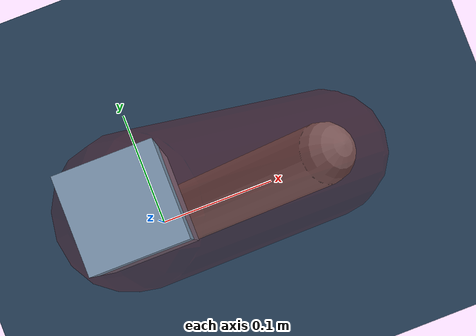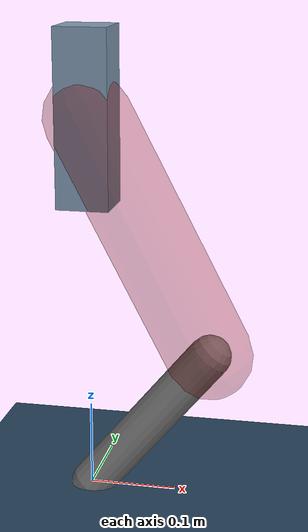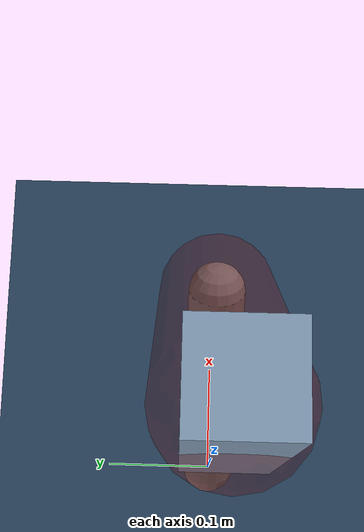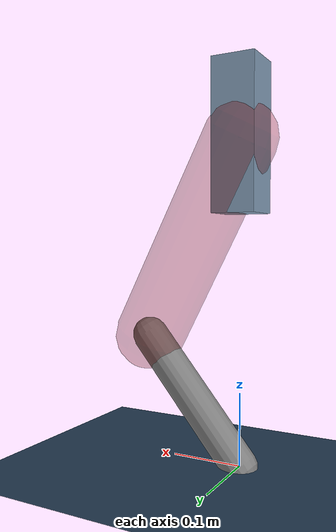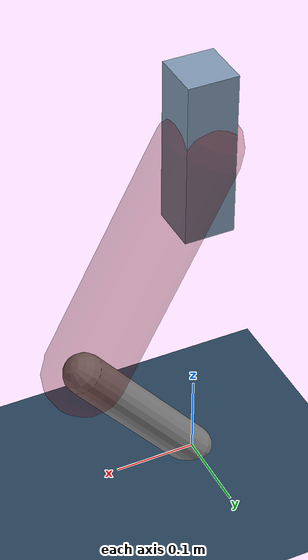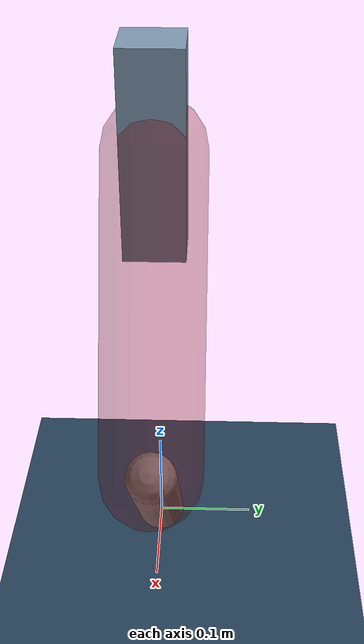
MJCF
<mujoco model="Hopper2D">
	<compiler inertiafromgeom="true" angle="radian" />
	<option timestep="0.001" integrator="implicit" cone="elliptic" solver="Newton" tolerance="1e-10" />

	<default>
		<geom contype="1" conaffinity="1" condim="3" friction="2 0.005 0.0001" solref="0.005 1" />
		<joint limited="true" damping="0.1" />
	</default>

	<asset>
		<texture name="skybox" type="skybox" builtin="gradient" rgb1=".4 .6 .8" rgb2="0 0 0" width="800" height="800" />
		<texture name="grid" type="2d" builtin="checker" rgb1=".1 .2 .3" rgb2=".2 .3 .4" width="300" height="300" mark="edge" markrgb=".2 .3 .4" />
		<material name="ground" texture="grid" texrepeat="1 1" texuniform="true" reflectance="0.1" />
		<material name="leg" rgba="0.5 0.6 0.7 1" />
	</asset>

	<worldbody>

		<geom name="floor" type="plane" size="5 5 0.25" material="ground" />

		<light directional="false" diffuse="0.8 0.8 0.8" specular="0.3 0.3 0.3" pos="0 0 2" dir="0 0 -1" />
		<light mode="targetbodycom" target="base" directional="false" diffuse="0.8 0.8 0.8" specular="0.3 0.3 0.3" pos="0 0 2" dir="0 0 -1" />

		<camera name="fixed" pos="0 -2 1" xyaxes="1 0 0 0 0 1" />
		<camera name="tracking" mode="trackcom" pos="0 -3 1" />

		<body name="root" pos="0 0 0.44116089417475024">
			<joint name="slide_x" type="slide" axis="1 0 0" range="-100 100" />
			<joint name="slide_z" type="slide" axis="0 0 1" range="0 10" />

			<body name="base" pos="0 0 0">
				<geom name="torso" type="box" size="0.03 0.03 0.1" mass="4.616" material="leg" />

				<body name="link1" pos="0 0 0" euler="0 1.0905612810831686 0">
					<joint type="hinge" axis="0 -1 0" pos="0 0 0" name="hinge1" limited="true" range="-3.14 3.14" stiffness="0" damping="0.1" />
					<geom name="thigh" type="capsule" fromto="0 0 0 0.3051761337565341 0 0" size="0.05" rgba="0.5 0 0 0.3" mass="1.0027755611426419" />

					<body name="link2" pos="0.3051761337565341 0 0" euler="0 1.1711560758122024 0">
						<joint type="hinge" axis="0 -1 0" pos="0 0 0" name="hinge2" limited="true" range="-3.14 3.14" stiffness="0" damping="0.1" />
						<geom name="shank" type="capsule" fromto="0 0 0 0.22124474189282944 0 0" size="0.025" mass="0.41869579351426356" />

					</body>
				</body>
			</body>
		</body>
	</worldbody>

	<actuator>
		<motor name="torque1" joint="hinge1" ctrlrange="-307.23622317960536 307.23622317960536" ctrllimited="true" gear="1" />
		<motor name="torque2" joint="hinge2" ctrlrange="-81.73705315582116 81.73705315582116" ctrllimited="true" gear="1" />
	</actuator>
</mujoco>
